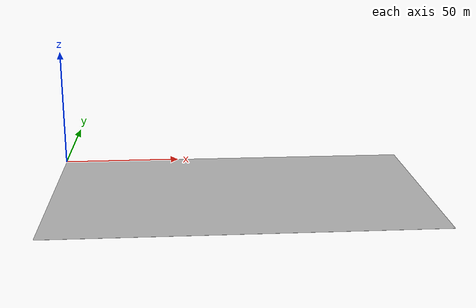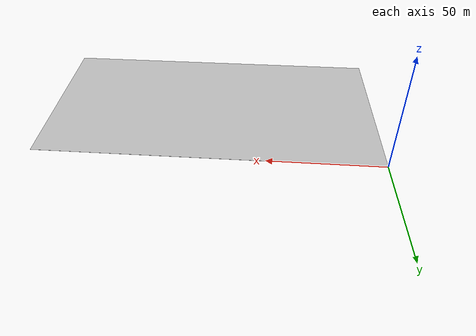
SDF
<?xml version="1.0"?>
<sdf version="1.6">
  <world name="default">

<model name="ground">
      <pose>75 -41.8 0 0 0 1.57</pose>
      <static>1</static>
      <link name="ground">
        <collision name="ground_coll">
          <geometry>
            <box>
              <size>83.6 150 0.05</size>
            </box>
          </geometry>
          <surface>
            <contact>
              <ode/>
            </contact>
          </surface>
        </collision>
        <visual name="ground_vis">
          <geometry>
            <box>
              <size>83.6 150  0.05</size>
            </box>
          </geometry>
          <material>
            <script>
              <uri> ./course.material </uri>  <!-- file://course.material -->
              <name>course</name>
            </script>
          </material>
        </visual>
      </link>
    </model>

    <include>
      <uri>model://sun</uri>
    </include>
    <!-- 새로운 camera_link 추가 -->
    <link name="camera_link">
      <pose>0.0 0.161236 1.386042 0.135030 0 0</pose>
      <visual name="camera_visual">
        <geometry>
          <box>
            <size>0.1 0.1 0.1</size>
          </box>
        </geometry>
      </visual>
    </link>

    <link name="camera_rgb_optical_frame">
      <inertial>
          <pose>0 0 0 0 0 0 </pose>
          <inertia>
              <ixx>0.001</ixx>
              <ixy>0.000</ixy>
              <ixz>0.000</ixz>
              <iyy>0.001</iyy>
              <iyz>0.000</iyz>
              <izz>0.001</izz>
          </inertia>
          <mass>0.035</mass>
      </inertial>

      <pose>0.0 0.161236 1.386042 0.135030 0.1745 0</pose>
      <sensor name="camera1" type="camera">
        <always_on>true</always_on>
        <visualize>true</visualize>
        <update_rate>10</update_rate>
        <camera name="picam">
          <horizontal_fov>1.085595</horizontal_fov>
          <image>
            <width>640</width>
            <height>480</height>
            <format>R8G8B8</format>
          </image>
          <clip>
            <near>0.03</near>
            <far>100</far>
          </clip>
          <noise>
            <type>gaussian</type>
            <mean>0.0</mean>
            <stddev>0.007</stddev>
          </noise>
        </camera>
        <plugin name="camera_driver" filename="libgazebo_ros_camera.so">
          <!-- ros -->
          <namespace>/demo</namespace>
          <remapping>image_raw:=image_demo</remapping>
          <remapping>camera_info:=image_demo</remapping>
          <!-- /ros -->
        </plugin>
      </sensor>
    </link>

    <!-- 기존 모델에 새로운 camera_link을 연결하는 joint 추가 -->
    <joint name="camera_rgb_joint" type="fixed">
      <parent>top_front</parent>
      <child>camera_link</child>
      <pose>0 0 0.1 0 0 0</pose>
      <axis>
        <xyz>0 0 1</xyz>
      </axis>
    </joint>

  </world>
</sdf>
